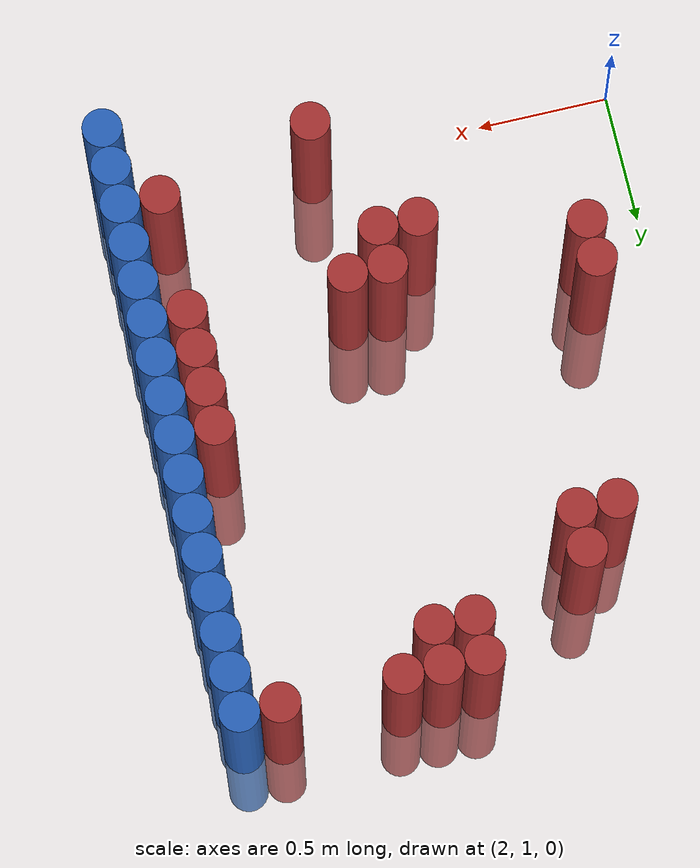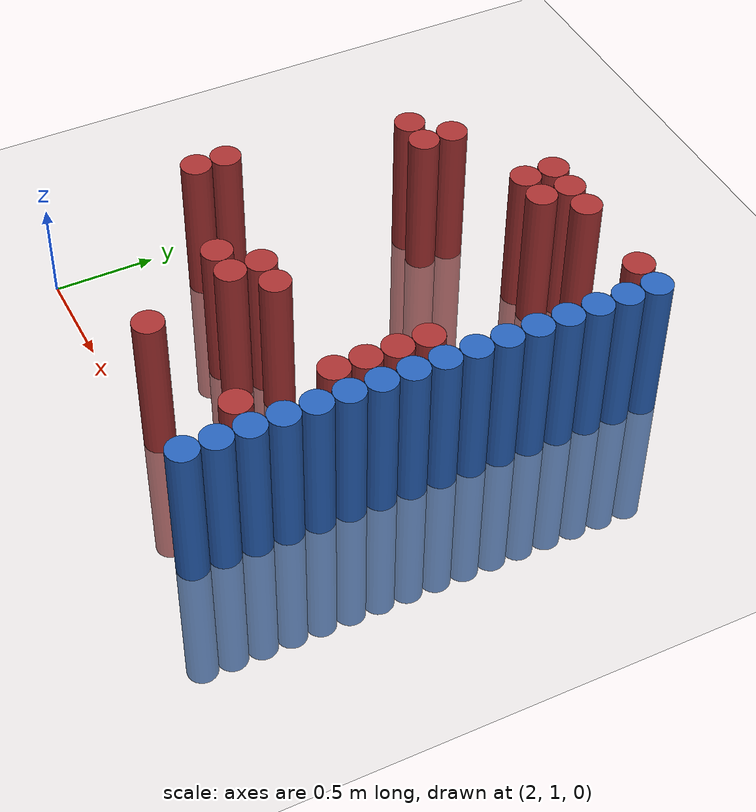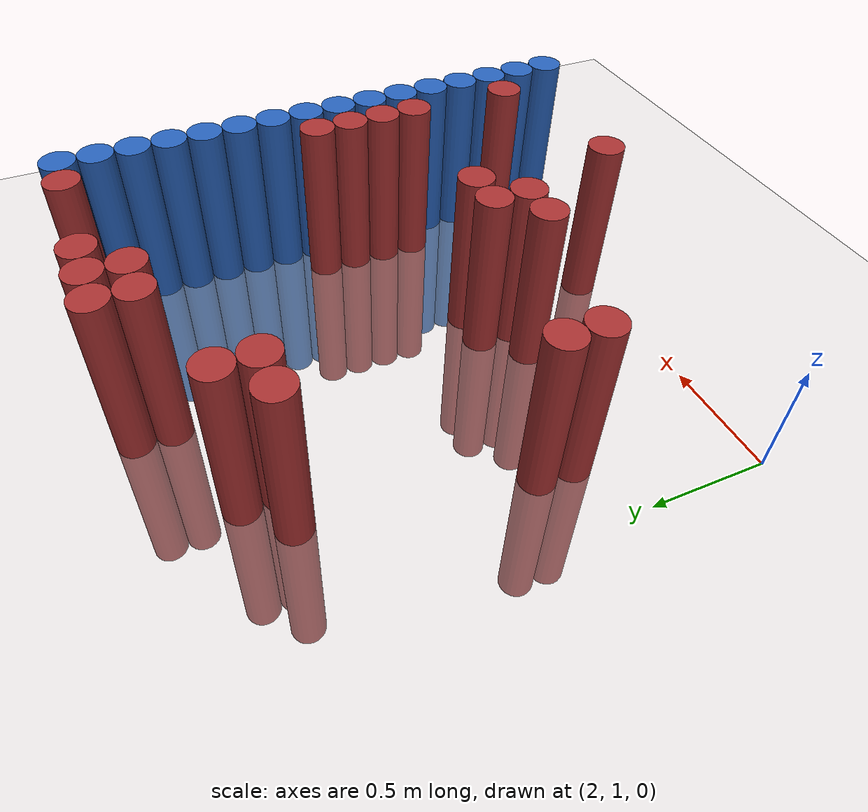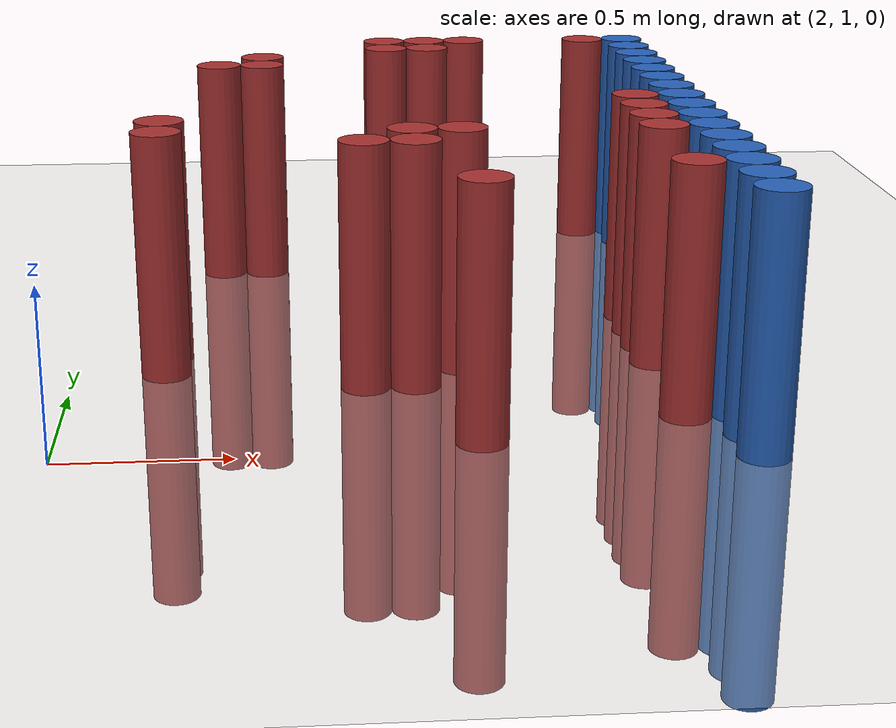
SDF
<sdf version="1.6">
 <world name="default">
  <model name="ground_plane">
   <static>1</static>
   <link name="link">
    <collision name="collision">
     <geometry><plane><normal>0 0 1</normal><size>100 100</size></plane></geometry>
     <surface><friction><ode><mu>100</mu><mu2>50</mu2></ode></friction></surface>
    </collision>
    <visual name="visual">
     <cast_shadows>0</cast_shadows>
     <geometry><plane><normal>0 0 1</normal><size>100 100</size></plane></geometry>
     <material>
      <script><uri>file://media/materials/scripts/gazebo.material</uri><name>Gazebo/Grey</name></script>
     </material>
    </visual>
   </link>
  </model>
  <model name="unit_cylinder_128">
   <static>1</static>
   <pose>3.925000 1.075000 0.000000 0.000000 0.000000 0.000000</pose>
   <link name="link">
    <inertial>
     <mass>1</mass>
     <inertia><ixx>0.145833</ixx><ixy>0</ixy><ixz>0</ixz><iyy>0.145833</iyy><iyz>0</iyz><izz>0.125</izz></inertia>
    </inertial>
    <collision name="collision">
     <geometry><cylinder><radius>0.075000</radius><length>1.5</length></cylinder></geometry>
    </collision>
    <visual name="visual">
     <geometry><cylinder><radius>0.075000</radius><length>1.5</length></cylinder></geometry>
     <material>
      <ambient>0.152000 0.379000 0.720000 1</ambient>
      <diffuse>0.152000 0.379000 0.720000 1</diffuse>
     </material>
     <material>
      <script><name>Gazebo/Grey</name><uri>file://media/materials/scripts/gazebo.material</uri></script>
     </material>
    </visual>
   </link>
  </model>
  <model name="unit_cylinder_130">
   <static>1</static>
   <pose>3.925000 1.225000 0.000000 0.000000 0.000000 0.000000</pose>
   <link name="link">
    <inertial>
     <mass>1</mass>
     <inertia><ixx>0.145833</ixx><ixy>0</ixy><ixz>0</ixz><iyy>0.145833</iyy><iyz>0</iyz><izz>0.125</izz></inertia>
    </inertial>
    <collision name="collision">
     <geometry><cylinder><radius>0.075000</radius><length>1.5</length></cylinder></geometry>
    </collision>
    <visual name="visual">
     <geometry><cylinder><radius>0.075000</radius><length>1.5</length></cylinder></geometry>
     <material>
      <ambient>0.152000 0.379000 0.720000 1</ambient>
      <diffuse>0.152000 0.379000 0.720000 1</diffuse>
     </material>
     <material>
      <script><name>Gazebo/Grey</name><uri>file://media/materials/scripts/gazebo.material</uri></script>
     </material>
    </visual>
   </link>
  </model>
  <model name="unit_cylinder_132">
   <static>1</static>
   <pose>3.925000 1.375000 0.000000 0.000000 0.000000 0.000000</pose>
   <link name="link">
    <inertial>
     <mass>1</mass>
     <inertia><ixx>0.145833</ixx><ixy>0</ixy><ixz>0</ixz><iyy>0.145833</iyy><iyz>0</iyz><izz>0.125</izz></inertia>
    </inertial>
    <collision name="collision">
     <geometry><cylinder><radius>0.075000</radius><length>1.5</length></cylinder></geometry>
    </collision>
    <visual name="visual">
     <geometry><cylinder><radius>0.075000</radius><length>1.5</length></cylinder></geometry>
     <material>
      <ambient>0.152000 0.379000 0.720000 1</ambient>
      <diffuse>0.152000 0.379000 0.720000 1</diffuse>
     </material>
     <material>
      <script><name>Gazebo/Grey</name><uri>file://media/materials/scripts/gazebo.material</uri></script>
     </material>
    </visual>
   </link>
  </model>
  <model name="unit_cylinder_134">
   <static>1</static>
   <pose>3.925000 1.525000 0.000000 0.000000 0.000000 0.000000</pose>
   <link name="link">
    <inertial>
     <mass>1</mass>
     <inertia><ixx>0.145833</ixx><ixy>0</ixy><ixz>0</ixz><iyy>0.145833</iyy><iyz>0</iyz><izz>0.125</izz></inertia>
    </inertial>
    <collision name="collision">
     <geometry><cylinder><radius>0.075000</radius><length>1.5</length></cylinder></geometry>
    </collision>
    <visual name="visual">
     <geometry><cylinder><radius>0.075000</radius><length>1.5</length></cylinder></geometry>
     <material>
      <ambient>0.152000 0.379000 0.720000 1</ambient>
      <diffuse>0.152000 0.379000 0.720000 1</diffuse>
     </material>
     <material>
      <script><name>Gazebo/Grey</name><uri>file://media/materials/scripts/gazebo.material</uri></script>
     </material>
    </visual>
   </link>
  </model>
  <model name="unit_cylinder_136">
   <static>1</static>
   <pose>3.925000 1.675000 0.000000 0.000000 0.000000 0.000000</pose>
   <link name="link">
    <inertial>
     <mass>1</mass>
     <inertia><ixx>0.145833</ixx><ixy>0</ixy><ixz>0</ixz><iyy>0.145833</iyy><iyz>0</iyz><izz>0.125</izz></inertia>
    </inertial>
    <collision name="collision">
     <geometry><cylinder><radius>0.075000</radius><length>1.5</length></cylinder></geometry>
    </collision>
    <visual name="visual">
     <geometry><cylinder><radius>0.075000</radius><length>1.5</length></cylinder></geometry>
     <material>
      <ambient>0.152000 0.379000 0.720000 1</ambient>
      <diffuse>0.152000 0.379000 0.720000 1</diffuse>
     </material>
     <material>
      <script><name>Gazebo/Grey</name><uri>file://media/materials/scripts/gazebo.material</uri></script>
     </material>
    </visual>
   </link>
  </model>
  <model name="unit_cylinder_138">
   <static>1</static>
   <pose>3.925000 1.825000 0.000000 0.000000 0.000000 0.000000</pose>
   <link name="link">
    <inertial>
     <mass>1</mass>
     <inertia><ixx>0.145833</ixx><ixy>0</ixy><ixz>0</ixz><iyy>0.145833</iyy><iyz>0</iyz><izz>0.125</izz></inertia>
    </inertial>
    <collision name="collision">
     <geometry><cylinder><radius>0.075000</radius><length>1.5</length></cylinder></geometry>
    </collision>
    <visual name="visual">
     <geometry><cylinder><radius>0.075000</radius><length>1.5</length></cylinder></geometry>
     <material>
      <ambient>0.152000 0.379000 0.720000 1</ambient>
      <diffuse>0.152000 0.379000 0.720000 1</diffuse>
     </material>
     <material>
      <script><name>Gazebo/Grey</name><uri>file://media/materials/scripts/gazebo.material</uri></script>
     </material>
    </visual>
   </link>
  </model>
  <model name="unit_cylinder_140">
   <static>1</static>
   <pose>3.925000 1.975000 0.000000 0.000000 0.000000 0.000000</pose>
   <link name="link">
    <inertial>
     <mass>1</mass>
     <inertia><ixx>0.145833</ixx><ixy>0</ixy><ixz>0</ixz><iyy>0.145833</iyy><iyz>0</iyz><izz>0.125</izz></inertia>
    </inertial>
    <collision name="collision">
     <geometry><cylinder><radius>0.075000</radius><length>1.5</length></cylinder></geometry>
    </collision>
    <visual name="visual">
     <geometry><cylinder><radius>0.075000</radius><length>1.5</length></cylinder></geometry>
     <material>
      <ambient>0.152000 0.379000 0.720000 1</ambient>
      <diffuse>0.152000 0.379000 0.720000 1</diffuse>
     </material>
     <material>
      <script><name>Gazebo/Grey</name><uri>file://media/materials/scripts/gazebo.material</uri></script>
     </material>
    </visual>
   </link>
  </model>
  <model name="unit_cylinder_142">
   <static>1</static>
   <pose>3.925000 2.125000 0.000000 0.000000 0.000000 0.000000</pose>
   <link name="link">
    <inertial>
     <mass>1</mass>
     <inertia><ixx>0.145833</ixx><ixy>0</ixy><ixz>0</ixz><iyy>0.145833</iyy><iyz>0</iyz><izz>0.125</izz></inertia>
    </inertial>
    <collision name="collision">
     <geometry><cylinder><radius>0.075000</radius><length>1.5</length></cylinder></geometry>
    </collision>
    <visual name="visual">
     <geometry><cylinder><radius>0.075000</radius><length>1.5</length></cylinder></geometry>
     <material>
      <ambient>0.152000 0.379000 0.720000 1</ambient>
      <diffuse>0.152000 0.379000 0.720000 1</diffuse>
     </material>
     <material>
      <script><name>Gazebo/Grey</name><uri>file://media/materials/scripts/gazebo.material</uri></script>
     </material>
    </visual>
   </link>
  </model>
  <model name="unit_cylinder_144">
   <static>1</static>
   <pose>3.925000 2.275000 0.000000 0.000000 0.000000 0.000000</pose>
   <link name="link">
    <inertial>
     <mass>1</mass>
     <inertia><ixx>0.145833</ixx><ixy>0</ixy><ixz>0</ixz><iyy>0.145833</iyy><iyz>0</iyz><izz>0.125</izz></inertia>
    </inertial>
    <collision name="collision">
     <geometry><cylinder><radius>0.075000</radius><length>1.5</length></cylinder></geometry>
    </collision>
    <visual name="visual">
     <geometry><cylinder><radius>0.075000</radius><length>1.5</length></cylinder></geometry>
     <material>
      <ambient>0.152000 0.379000 0.720000 1</ambient>
      <diffuse>0.152000 0.379000 0.720000 1</diffuse>
     </material>
     <material>
      <script><name>Gazebo/Grey</name><uri>file://media/materials/scripts/gazebo.material</uri></script>
     </material>
    </visual>
   </link>
  </model>
  <model name="unit_cylinder_146">
   <static>1</static>
   <pose>3.925000 2.425000 0.000000 0.000000 0.000000 0.000000</pose>
   <link name="link">
    <inertial>
     <mass>1</mass>
     <inertia><ixx>0.145833</ixx><ixy>0</ixy><ixz>0</ixz><iyy>0.145833</iyy><iyz>0</iyz><izz>0.125</izz></inertia>
    </inertial>
    <collision name="collision">
     <geometry><cylinder><radius>0.075000</radius><length>1.5</length></cylinder></geometry>
    </collision>
    <visual name="visual">
     <geometry><cylinder><radius>0.075000</radius><length>1.5</length></cylinder></geometry>
     <material>
      <ambient>0.152000 0.379000 0.720000 1</ambient>
      <diffuse>0.152000 0.379000 0.720000 1</diffuse>
     </material>
     <material>
      <script><name>Gazebo/Grey</name><uri>file://media/materials/scripts/gazebo.material</uri></script>
     </material>
    </visual>
   </link>
  </model>
  <model name="unit_cylinder_148">
   <static>1</static>
   <pose>3.925000 2.575000 0.000000 0.000000 0.000000 0.000000</pose>
   <link name="link">
    <inertial>
     <mass>1</mass>
     <inertia><ixx>0.145833</ixx><ixy>0</ixy><ixz>0</ixz><iyy>0.145833</iyy><iyz>0</iyz><izz>0.125</izz></inertia>
    </inertial>
    <collision name="collision">
     <geometry><cylinder><radius>0.075000</radius><length>1.5</length></cylinder></geometry>
    </collision>
    <visual name="visual">
     <geometry><cylinder><radius>0.075000</radius><length>1.5</length></cylinder></geometry>
     <material>
      <ambient>0.152000 0.379000 0.720000 1</ambient>
      <diffuse>0.152000 0.379000 0.720000 1</diffuse>
     </material>
     <material>
      <script><name>Gazebo/Grey</name><uri>file://media/materials/scripts/gazebo.material</uri></script>
     </material>
    </visual>
   </link>
  </model>
  <model name="unit_cylinder_150">
   <static>1</static>
   <pose>3.925000 2.725000 0.000000 0.000000 0.000000 0.000000</pose>
   <link name="link">
    <inertial>
     <mass>1</mass>
     <inertia><ixx>0.145833</ixx><ixy>0</ixy><ixz>0</ixz><iyy>0.145833</iyy><iyz>0</iyz><izz>0.125</izz></inertia>
    </inertial>
    <collision name="collision">
     <geometry><cylinder><radius>0.075000</radius><length>1.5</length></cylinder></geometry>
    </collision>
    <visual name="visual">
     <geometry><cylinder><radius>0.075000</radius><length>1.5</length></cylinder></geometry>
     <material>
      <ambient>0.152000 0.379000 0.720000 1</ambient>
      <diffuse>0.152000 0.379000 0.720000 1</diffuse>
     </material>
     <material>
      <script><name>Gazebo/Grey</name><uri>file://media/materials/scripts/gazebo.material</uri></script>
     </material>
    </visual>
   </link>
  </model>
  <model name="unit_cylinder_152">
   <static>1</static>
   <pose>3.925000 2.875000 0.000000 0.000000 0.000000 0.000000</pose>
   <link name="link">
    <inertial>
     <mass>1</mass>
     <inertia><ixx>0.145833</ixx><ixy>0</ixy><ixz>0</ixz><iyy>0.145833</iyy><iyz>0</iyz><izz>0.125</izz></inertia>
    </inertial>
    <collision name="collision">
     <geometry><cylinder><radius>0.075000</radius><length>1.5</length></cylinder></geometry>
    </collision>
    <visual name="visual">
     <geometry><cylinder><radius>0.075000</radius><length>1.5</length></cylinder></geometry>
     <material>
      <ambient>0.152000 0.379000 0.720000 1</ambient>
      <diffuse>0.152000 0.379000 0.720000 1</diffuse>
     </material>
     <material>
      <script><name>Gazebo/Grey</name><uri>file://media/materials/scripts/gazebo.material</uri></script>
     </material>
    </visual>
   </link>
  </model>
  <model name="unit_cylinder_154">
   <static>1</static>
   <pose>3.925000 3.025000 0.000000 0.000000 0.000000 0.000000</pose>
   <link name="link">
    <inertial>
     <mass>1</mass>
     <inertia><ixx>0.145833</ixx><ixy>0</ixy><ixz>0</ixz><iyy>0.145833</iyy><iyz>0</iyz><izz>0.125</izz></inertia>
    </inertial>
    <collision name="collision">
     <geometry><cylinder><radius>0.075000</radius><length>1.5</length></cylinder></geometry>
    </collision>
    <visual name="visual">
     <geometry><cylinder><radius>0.075000</radius><length>1.5</length></cylinder></geometry>
     <material>
      <ambient>0.152000 0.379000 0.720000 1</ambient>
      <diffuse>0.152000 0.379000 0.720000 1</diffuse>
     </material>
     <material>
      <script><name>Gazebo/Grey</name><uri>file://media/materials/scripts/gazebo.material</uri></script>
     </material>
    </visual>
   </link>
  </model>
  <model name="unit_cylinder_156">
   <static>1</static>
   <pose>3.925000 3.175000 0.000000 0.000000 0.000000 0.000000</pose>
   <link name="link">
    <inertial>
     <mass>1</mass>
     <inertia><ixx>0.145833</ixx><ixy>0</ixy><ixz>0</ixz><iyy>0.145833</iyy><iyz>0</iyz><izz>0.125</izz></inertia>
    </inertial>
    <collision name="collision">
     <geometry><cylinder><radius>0.075000</radius><length>1.5</length></cylinder></geometry>
    </collision>
    <visual name="visual">
     <geometry><cylinder><radius>0.075000</radius><length>1.5</length></cylinder></geometry>
     <material>
      <ambient>0.152000 0.379000 0.720000 1</ambient>
      <diffuse>0.152000 0.379000 0.720000 1</diffuse>
     </material>
     <material>
      <script><name>Gazebo/Grey</name><uri>file://media/materials/scripts/gazebo.material</uri></script>
     </material>
    </visual>
   </link>
  </model>
  <model name="unit_cylinder_510">
   <static>1</static>
   <pose>2.275000 1.675000 0.000000 0.000000 0.000000 0.000000</pose>
   <link name="link">
    <inertial>
     <mass>1</mass>
     <inertia><ixx>0.145833</ixx><ixy>0</ixy><ixz>0</ixz><iyy>0.145833</iyy><iyz>0</iyz><izz>0.125</izz></inertia>
    </inertial>
    <collision name="collision">
     <geometry><cylinder><radius>0.075000</radius><length>1.5</length></cylinder></geometry>
    </collision>
    <visual name="visual">
     <geometry><cylinder><radius>0.075000</radius><length>1.5</length></cylinder></geometry>
     <material>
      <ambient>0.648000 0.192000 0.192000 1</ambient>
      <diffuse>0.648000 0.192000 0.192000 1</diffuse>
     </material>
     <material>
      <script><name>Gazebo/Grey</name><uri>file://media/materials/scripts/gazebo.material</uri></script>
     </material>
    </visual>
   </link>
  </model>
  <model name="unit_cylinder_511">
   <static>1</static>
   <pose>2.275000 1.825000 0.000000 0.000000 0.000000 0.000000</pose>
   <link name="link">
    <inertial>
     <mass>1</mass>
     <inertia><ixx>0.145833</ixx><ixy>0</ixy><ixz>0</ixz><iyy>0.145833</iyy><iyz>0</iyz><izz>0.125</izz></inertia>
    </inertial>
    <collision name="collision">
     <geometry><cylinder><radius>0.075000</radius><length>1.5</length></cylinder></geometry>
    </collision>
    <visual name="visual">
     <geometry><cylinder><radius>0.075000</radius><length>1.5</length></cylinder></geometry>
     <material>
      <ambient>0.648000 0.192000 0.192000 1</ambient>
      <diffuse>0.648000 0.192000 0.192000 1</diffuse>
     </material>
     <material>
      <script><name>Gazebo/Grey</name><uri>file://media/materials/scripts/gazebo.material</uri></script>
     </material>
    </visual>
   </link>
  </model>
  <model name="unit_cylinder_517">
   <static>1</static>
   <pose>2.425000 2.725000 0.000000 0.000000 0.000000 0.000000</pose>
   <link name="link">
    <inertial>
     <mass>1</mass>
     <inertia><ixx>0.145833</ixx><ixy>0</ixy><ixz>0</ixz><iyy>0.145833</iyy><iyz>0</iyz><izz>0.125</izz></inertia>
    </inertial>
    <collision name="collision">
     <geometry><cylinder><radius>0.075000</radius><length>1.5</length></cylinder></geometry>
    </collision>
    <visual name="visual">
     <geometry><cylinder><radius>0.075000</radius><length>1.5</length></cylinder></geometry>
     <material>
      <ambient>0.648000 0.192000 0.192000 1</ambient>
      <diffuse>0.648000 0.192000 0.192000 1</diffuse>
     </material>
     <material>
      <script><name>Gazebo/Grey</name><uri>file://media/materials/scripts/gazebo.material</uri></script>
     </material>
    </visual>
   </link>
  </model>
  <model name="unit_cylinder_524">
   <static>1</static>
   <pose>2.575000 2.725000 0.000000 0.000000 0.000000 0.000000</pose>
   <link name="link">
    <inertial>
     <mass>1</mass>
     <inertia><ixx>0.145833</ixx><ixy>0</ixy><ixz>0</ixz><iyy>0.145833</iyy><iyz>0</iyz><izz>0.125</izz></inertia>
    </inertial>
    <collision name="collision">
     <geometry><cylinder><radius>0.075000</radius><length>1.5</length></cylinder></geometry>
    </collision>
    <visual name="visual">
     <geometry><cylinder><radius>0.075000</radius><length>1.5</length></cylinder></geometry>
     <material>
      <ambient>0.648000 0.192000 0.192000 1</ambient>
      <diffuse>0.648000 0.192000 0.192000 1</diffuse>
     </material>
     <material>
      <script><name>Gazebo/Grey</name><uri>file://media/materials/scripts/gazebo.material</uri></script>
     </material>
    </visual>
   </link>
  </model>
  <model name="unit_cylinder_525">
   <static>1</static>
   <pose>2.575000 2.875000 0.000000 0.000000 0.000000 0.000000</pose>
   <link name="link">
    <inertial>
     <mass>1</mass>
     <inertia><ixx>0.145833</ixx><ixy>0</ixy><ixz>0</ixz><iyy>0.145833</iyy><iyz>0</iyz><izz>0.125</izz></inertia>
    </inertial>
    <collision name="collision">
     <geometry><cylinder><radius>0.075000</radius><length>1.5</length></cylinder></geometry>
    </collision>
    <visual name="visual">
     <geometry><cylinder><radius>0.075000</radius><length>1.5</length></cylinder></geometry>
     <material>
      <ambient>0.648000 0.192000 0.192000 1</ambient>
      <diffuse>0.648000 0.192000 0.192000 1</diffuse>
     </material>
     <material>
      <script><name>Gazebo/Grey</name><uri>file://media/materials/scripts/gazebo.material</uri></script>
     </material>
    </visual>
   </link>
  </model>
  <model name="unit_cylinder_549">
   <static>1</static>
   <pose>2.875000 1.525000 0.000000 0.000000 0.000000 0.000000</pose>
   <link name="link">
    <inertial>
     <mass>1</mass>
     <inertia><ixx>0.145833</ixx><ixy>0</ixy><ixz>0</ixz><iyy>0.145833</iyy><iyz>0</iyz><izz>0.125</izz></inertia>
    </inertial>
    <collision name="collision">
     <geometry><cylinder><radius>0.075000</radius><length>1.5</length></cylinder></geometry>
    </collision>
    <visual name="visual">
     <geometry><cylinder><radius>0.075000</radius><length>1.5</length></cylinder></geometry>
     <material>
      <ambient>0.648000 0.192000 0.192000 1</ambient>
      <diffuse>0.648000 0.192000 0.192000 1</diffuse>
     </material>
     <material>
      <script><name>Gazebo/Grey</name><uri>file://media/materials/scripts/gazebo.material</uri></script>
     </material>
    </visual>
   </link>
  </model>
  <model name="unit_cylinder_558">
   <static>1</static>
   <pose>3.025000 1.525000 0.000000 0.000000 0.000000 0.000000</pose>
   <link name="link">
    <inertial>
     <mass>1</mass>
     <inertia><ixx>0.145833</ixx><ixy>0</ixy><ixz>0</ixz><iyy>0.145833</iyy><iyz>0</iyz><izz>0.125</izz></inertia>
    </inertial>
    <collision name="collision">
     <geometry><cylinder><radius>0.075000</radius><length>1.5</length></cylinder></geometry>
    </collision>
    <visual name="visual">
     <geometry><cylinder><radius>0.075000</radius><length>1.5</length></cylinder></geometry>
     <material>
      <ambient>0.648000 0.192000 0.192000 1</ambient>
      <diffuse>0.648000 0.192000 0.192000 1</diffuse>
     </material>
     <material>
      <script><name>Gazebo/Grey</name><uri>file://media/materials/scripts/gazebo.material</uri></script>
     </material>
    </visual>
   </link>
  </model>
  <model name="unit_cylinder_559">
   <static>1</static>
   <pose>3.025000 1.675000 0.000000 0.000000 0.000000 0.000000</pose>
   <link name="link">
    <inertial>
     <mass>1</mass>
     <inertia><ixx>0.145833</ixx><ixy>0</ixy><ixz>0</ixz><iyy>0.145833</iyy><iyz>0</iyz><izz>0.125</izz></inertia>
    </inertial>
    <collision name="collision">
     <geometry><cylinder><radius>0.075000</radius><length>1.5</length></cylinder></geometry>
    </collision>
    <visual name="visual">
     <geometry><cylinder><radius>0.075000</radius><length>1.5</length></cylinder></geometry>
     <material>
      <ambient>0.648000 0.192000 0.192000 1</ambient>
      <diffuse>0.648000 0.192000 0.192000 1</diffuse>
     </material>
     <material>
      <script><name>Gazebo/Grey</name><uri>file://media/materials/scripts/gazebo.material</uri></script>
     </material>
    </visual>
   </link>
  </model>
  <model name="unit_cylinder_560">
   <static>1</static>
   <pose>3.025000 3.025000 0.000000 0.000000 0.000000 0.000000</pose>
   <link name="link">
    <inertial>
     <mass>1</mass>
     <inertia><ixx>0.145833</ixx><ixy>0</ixy><ixz>0</ixz><iyy>0.145833</iyy><iyz>0</iyz><izz>0.125</izz></inertia>
    </inertial>
    <collision name="collision">
     <geometry><cylinder><radius>0.075000</radius><length>1.5</length></cylinder></geometry>
    </collision>
    <visual name="visual">
     <geometry><cylinder><radius>0.075000</radius><length>1.5</length></cylinder></geometry>
     <material>
      <ambient>0.648000 0.192000 0.192000 1</ambient>
      <diffuse>0.648000 0.192000 0.192000 1</diffuse>
     </material>
     <material>
      <script><name>Gazebo/Grey</name><uri>file://media/materials/scripts/gazebo.material</uri></script>
     </material>
    </visual>
   </link>
  </model>
  <model name="unit_cylinder_561">
   <static>1</static>
   <pose>3.025000 3.175000 0.000000 0.000000 0.000000 0.000000</pose>
   <link name="link">
    <inertial>
     <mass>1</mass>
     <inertia><ixx>0.145833</ixx><ixy>0</ixy><ixz>0</ixz><iyy>0.145833</iyy><iyz>0</iyz><izz>0.125</izz></inertia>
    </inertial>
    <collision name="collision">
     <geometry><cylinder><radius>0.075000</radius><length>1.5</length></cylinder></geometry>
    </collision>
    <visual name="visual">
     <geometry><cylinder><radius>0.075000</radius><length>1.5</length></cylinder></geometry>
     <material>
      <ambient>0.648000 0.192000 0.192000 1</ambient>
      <diffuse>0.648000 0.192000 0.192000 1</diffuse>
     </material>
     <material>
      <script><name>Gazebo/Grey</name><uri>file://media/materials/scripts/gazebo.material</uri></script>
     </material>
    </visual>
   </link>
  </model>
  <model name="unit_cylinder_568">
   <static>1</static>
   <pose>3.175000 1.075000 0.000000 0.000000 0.000000 0.000000</pose>
   <link name="link">
    <inertial>
     <mass>1</mass>
     <inertia><ixx>0.145833</ixx><ixy>0</ixy><ixz>0</ixz><iyy>0.145833</iyy><iyz>0</iyz><izz>0.125</izz></inertia>
    </inertial>
    <collision name="collision">
     <geometry><cylinder><radius>0.075000</radius><length>1.5</length></cylinder></geometry>
    </collision>
    <visual name="visual">
     <geometry><cylinder><radius>0.075000</radius><length>1.5</length></cylinder></geometry>
     <material>
      <ambient>0.648000 0.192000 0.192000 1</ambient>
      <diffuse>0.648000 0.192000 0.192000 1</diffuse>
     </material>
     <material>
      <script><name>Gazebo/Grey</name><uri>file://media/materials/scripts/gazebo.material</uri></script>
     </material>
    </visual>
   </link>
  </model>
  <model name="unit_cylinder_569">
   <static>1</static>
   <pose>3.175000 1.675000 0.000000 0.000000 0.000000 0.000000</pose>
   <link name="link">
    <inertial>
     <mass>1</mass>
     <inertia><ixx>0.145833</ixx><ixy>0</ixy><ixz>0</ixz><iyy>0.145833</iyy><iyz>0</iyz><izz>0.125</izz></inertia>
    </inertial>
    <collision name="collision">
     <geometry><cylinder><radius>0.075000</radius><length>1.5</length></cylinder></geometry>
    </collision>
    <visual name="visual">
     <geometry><cylinder><radius>0.075000</radius><length>1.5</length></cylinder></geometry>
     <material>
      <ambient>0.648000 0.192000 0.192000 1</ambient>
      <diffuse>0.648000 0.192000 0.192000 1</diffuse>
     </material>
     <material>
      <script><name>Gazebo/Grey</name><uri>file://media/materials/scripts/gazebo.material</uri></script>
     </material>
    </visual>
   </link>
  </model>
  <model name="unit_cylinder_570">
   <static>1</static>
   <pose>3.175000 3.025000 0.000000 0.000000 0.000000 0.000000</pose>
   <link name="link">
    <inertial>
     <mass>1</mass>
     <inertia><ixx>0.145833</ixx><ixy>0</ixy><ixz>0</ixz><iyy>0.145833</iyy><iyz>0</iyz><izz>0.125</izz></inertia>
    </inertial>
    <collision name="collision">
     <geometry><cylinder><radius>0.075000</radius><length>1.5</length></cylinder></geometry>
    </collision>
    <visual name="visual">
     <geometry><cylinder><radius>0.075000</radius><length>1.5</length></cylinder></geometry>
     <material>
      <ambient>0.648000 0.192000 0.192000 1</ambient>
      <diffuse>0.648000 0.192000 0.192000 1</diffuse>
     </material>
     <material>
      <script><name>Gazebo/Grey</name><uri>file://media/materials/scripts/gazebo.material</uri></script>
     </material>
    </visual>
   </link>
  </model>
  <model name="unit_cylinder_571">
   <static>1</static>
   <pose>3.175000 3.175000 0.000000 0.000000 0.000000 0.000000</pose>
   <link name="link">
    <inertial>
     <mass>1</mass>
     <inertia><ixx>0.145833</ixx><ixy>0</ixy><ixz>0</ixz><iyy>0.145833</iyy><iyz>0</iyz><izz>0.125</izz></inertia>
    </inertial>
    <collision name="collision">
     <geometry><cylinder><radius>0.075000</radius><length>1.5</length></cylinder></geometry>
    </collision>
    <visual name="visual">
     <geometry><cylinder><radius>0.075000</radius><length>1.5</length></cylinder></geometry>
     <material>
      <ambient>0.648000 0.192000 0.192000 1</ambient>
      <diffuse>0.648000 0.192000 0.192000 1</diffuse>
     </material>
     <material>
      <script><name>Gazebo/Grey</name><uri>file://media/materials/scripts/gazebo.material</uri></script>
     </material>
    </visual>
   </link>
  </model>
  <model name="unit_cylinder_584">
   <static>1</static>
   <pose>3.325000 3.175000 0.000000 0.000000 0.000000 0.000000</pose>
   <link name="link">
    <inertial>
     <mass>1</mass>
     <inertia><ixx>0.145833</ixx><ixy>0</ixy><ixz>0</ixz><iyy>0.145833</iyy><iyz>0</iyz><izz>0.125</izz></inertia>
    </inertial>
    <collision name="collision">
     <geometry><cylinder><radius>0.075000</radius><length>1.5</length></cylinder></geometry>
    </collision>
    <visual name="visual">
     <geometry><cylinder><radius>0.075000</radius><length>1.5</length></cylinder></geometry>
     <material>
      <ambient>0.648000 0.192000 0.192000 1</ambient>
      <diffuse>0.648000 0.192000 0.192000 1</diffuse>
     </material>
     <material>
      <script><name>Gazebo/Grey</name><uri>file://media/materials/scripts/gazebo.material</uri></script>
     </material>
    </visual>
   </link>
  </model>
  <model name="unit_cylinder_609">
   <static>1</static>
   <pose>3.775000 1.225000 0.000000 0.000000 0.000000 0.000000</pose>
   <link name="link">
    <inertial>
     <mass>1</mass>
     <inertia><ixx>0.145833</ixx><ixy>0</ixy><ixz>0</ixz><iyy>0.145833</iyy><iyz>0</iyz><izz>0.125</izz></inertia>
    </inertial>
    <collision name="collision">
     <geometry><cylinder><radius>0.075000</radius><length>1.5</length></cylinder></geometry>
    </collision>
    <visual name="visual">
     <geometry><cylinder><radius>0.075000</radius><length>1.5</length></cylinder></geometry>
     <material>
      <ambient>0.648000 0.192000 0.192000 1</ambient>
      <diffuse>0.648000 0.192000 0.192000 1</diffuse>
     </material>
     <material>
      <script><name>Gazebo/Grey</name><uri>file://media/materials/scripts/gazebo.material</uri></script>
     </material>
    </visual>
   </link>
  </model>
  <model name="unit_cylinder_610">
   <static>1</static>
   <pose>3.775000 1.675000 0.000000 0.000000 0.000000 0.000000</pose>
   <link name="link">
    <inertial>
     <mass>1</mass>
     <inertia><ixx>0.145833</ixx><ixy>0</ixy><ixz>0</ixz><iyy>0.145833</iyy><iyz>0</iyz><izz>0.125</izz></inertia>
    </inertial>
    <collision name="collision">
     <geometry><cylinder><radius>0.075000</radius><length>1.5</length></cylinder></geometry>
    </collision>
    <visual name="visual">
     <geometry><cylinder><radius>0.075000</radius><length>1.5</length></cylinder></geometry>
     <material>
      <ambient>0.648000 0.192000 0.192000 1</ambient>
      <diffuse>0.648000 0.192000 0.192000 1</diffuse>
     </material>
     <material>
      <script><name>Gazebo/Grey</name><uri>file://media/materials/scripts/gazebo.material</uri></script>
     </material>
    </visual>
   </link>
  </model>
  <model name="unit_cylinder_611">
   <static>1</static>
   <pose>3.775000 1.825000 0.000000 0.000000 0.000000 0.000000</pose>
   <link name="link">
    <inertial>
     <mass>1</mass>
     <inertia><ixx>0.145833</ixx><ixy>0</ixy><ixz>0</ixz><iyy>0.145833</iyy><iyz>0</iyz><izz>0.125</izz></inertia>
    </inertial>
    <collision name="collision">
     <geometry><cylinder><radius>0.075000</radius><length>1.5</length></cylinder></geometry>
    </collision>
    <visual name="visual">
     <geometry><cylinder><radius>0.075000</radius><length>1.5</length></cylinder></geometry>
     <material>
      <ambient>0.648000 0.192000 0.192000 1</ambient>
      <diffuse>0.648000 0.192000 0.192000 1</diffuse>
     </material>
     <material>
      <script><name>Gazebo/Grey</name><uri>file://media/materials/scripts/gazebo.material</uri></script>
     </material>
    </visual>
   </link>
  </model>
  <model name="unit_cylinder_612">
   <static>1</static>
   <pose>3.775000 1.975000 0.000000 0.000000 0.000000 0.000000</pose>
   <link name="link">
    <inertial>
     <mass>1</mass>
     <inertia><ixx>0.145833</ixx><ixy>0</ixy><ixz>0</ixz><iyy>0.145833</iyy><iyz>0</iyz><izz>0.125</izz></inertia>
    </inertial>
    <collision name="collision">
     <geometry><cylinder><radius>0.075000</radius><length>1.5</length></cylinder></geometry>
    </collision>
    <visual name="visual">
     <geometry><cylinder><radius>0.075000</radius><length>1.5</length></cylinder></geometry>
     <material>
      <ambient>0.648000 0.192000 0.192000 1</ambient>
      <diffuse>0.648000 0.192000 0.192000 1</diffuse>
     </material>
     <material>
      <script><name>Gazebo/Grey</name><uri>file://media/materials/scripts/gazebo.material</uri></script>
     </material>
    </visual>
   </link>
  </model>
  <model name="unit_cylinder_613">
   <static>1</static>
   <pose>3.775000 2.125000 0.000000 0.000000 0.000000 0.000000</pose>
   <link name="link">
    <inertial>
     <mass>1</mass>
     <inertia><ixx>0.145833</ixx><ixy>0</ixy><ixz>0</ixz><iyy>0.145833</iyy><iyz>0</iyz><izz>0.125</izz></inertia>
    </inertial>
    <collision name="collision">
     <geometry><cylinder><radius>0.075000</radius><length>1.5</length></cylinder></geometry>
    </collision>
    <visual name="visual">
     <geometry><cylinder><radius>0.075000</radius><length>1.5</length></cylinder></geometry>
     <material>
      <ambient>0.648000 0.192000 0.192000 1</ambient>
      <diffuse>0.648000 0.192000 0.192000 1</diffuse>
     </material>
     <material>
      <script><name>Gazebo/Grey</name><uri>file://media/materials/scripts/gazebo.material</uri></script>
     </material>
    </visual>
   </link>
  </model>
  <model name="unit_cylinder_614">
   <static>1</static>
   <pose>3.775000 3.175000 0.000000 0.000000 0.000000 0.000000</pose>
   <link name="link">
    <inertial>
     <mass>1</mass>
     <inertia><ixx>0.145833</ixx><ixy>0</ixy><ixz>0</ixz><iyy>0.145833</iyy><iyz>0</iyz><izz>0.125</izz></inertia>
    </inertial>
    <collision name="collision">
     <geometry><cylinder><radius>0.075000</radius><length>1.5</length></cylinder></geometry>
    </collision>
    <visual name="visual">
     <geometry><cylinder><radius>0.075000</radius><length>1.5</length></cylinder></geometry>
     <material>
      <ambient>0.648000 0.192000 0.192000 1</ambient>
      <diffuse>0.648000 0.192000 0.192000 1</diffuse>
     </material>
     <material>
      <script><name>Gazebo/Grey</name><uri>file://media/materials/scripts/gazebo.material</uri></script>
     </material>
    </visual>
   </link>
  </model>
  <model name="unit_cylinder_641">
   <static>1</static>
   <pose>3.925000 0.925000 0.000000 0.000000 0.000000 0.000000</pose>
   <link name="link">
    <inertial>
     <mass>1</mass>
     <inertia><ixx>0.145833</ixx><ixy>0</ixy><ixz>0</ixz><iyy>0.145833</iyy><iyz>0</iyz><izz>0.125</izz></inertia>
    </inertial>
    <collision name="collision">
     <geometry><cylinder><radius>0.075000</radius><length>1.5</length></cylinder></geometry>
    </collision>
    <visual name="visual">
     <geometry><cylinder><radius>0.075000</radius><length>1.5</length></cylinder></geometry>
     <material>
      <ambient>0.152000 0.379000 0.720000 1</ambient>
      <diffuse>0.152000 0.379000 0.720000 1</diffuse>
     </material>
     <material>
      <script><name>Gazebo/Grey</name><uri>file://media/materials/scripts/gazebo.material</uri></script>
     </material>
    </visual>
   </link>
  </model>
  <model name="unit_cylinder_642">
   <static>1</static>
   <pose>3.925000 1.075000 0.000000 0.000000 0.000000 0.000000</pose>
   <link name="link">
    <inertial>
     <mass>1</mass>
     <inertia><ixx>0.145833</ixx><ixy>0</ixy><ixz>0</ixz><iyy>0.145833</iyy><iyz>0</iyz><izz>0.125</izz></inertia>
    </inertial>
    <collision name="collision">
     <geometry><cylinder><radius>0.075000</radius><length>1.5</length></cylinder></geometry>
    </collision>
    <visual name="visual">
     <geometry><cylinder><radius>0.075000</radius><length>1.5</length></cylinder></geometry>
     <material>
      <ambient>0.152000 0.379000 0.720000 1</ambient>
      <diffuse>0.152000 0.379000 0.720000 1</diffuse>
     </material>
     <material>
      <script><name>Gazebo/Grey</name><uri>file://media/materials/scripts/gazebo.material</uri></script>
     </material>
    </visual>
   </link>
  </model>
  <model name="unit_cylinder_643">
   <static>1</static>
   <pose>3.925000 1.225000 0.000000 0.000000 0.000000 0.000000</pose>
   <link name="link">
    <inertial>
     <mass>1</mass>
     <inertia><ixx>0.145833</ixx><ixy>0</ixy><ixz>0</ixz><iyy>0.145833</iyy><iyz>0</iyz><izz>0.125</izz></inertia>
    </inertial>
    <collision name="collision">
     <geometry><cylinder><radius>0.075000</radius><length>1.5</length></cylinder></geometry>
    </collision>
    <visual name="visual">
     <geometry><cylinder><radius>0.075000</radius><length>1.5</length></cylinder></geometry>
     <material>
      <ambient>0.152000 0.379000 0.720000 1</ambient>
      <diffuse>0.152000 0.379000 0.720000 1</diffuse>
     </material>
     <material>
      <script><name>Gazebo/Grey</name><uri>file://media/materials/scripts/gazebo.material</uri></script>
     </material>
    </visual>
   </link>
  </model>
  <model name="unit_cylinder_644">
   <static>1</static>
   <pose>3.925000 1.375000 0.000000 0.000000 0.000000 0.000000</pose>
   <link name="link">
    <inertial>
     <mass>1</mass>
     <inertia><ixx>0.145833</ixx><ixy>0</ixy><ixz>0</ixz><iyy>0.145833</iyy><iyz>0</iyz><izz>0.125</izz></inertia>
    </inertial>
    <collision name="collision">
     <geometry><cylinder><radius>0.075000</radius><length>1.5</length></cylinder></geometry>
    </collision>
    <visual name="visual">
     <geometry><cylinder><radius>0.075000</radius><length>1.5</length></cylinder></geometry>
     <material>
      <ambient>0.152000 0.379000 0.720000 1</ambient>
      <diffuse>0.152000 0.379000 0.720000 1</diffuse>
     </material>
     <material>
      <script><name>Gazebo/Grey</name><uri>file://media/materials/scripts/gazebo.material</uri></script>
     </material>
    </visual>
   </link>
  </model>
  <model name="unit_cylinder_645">
   <static>1</static>
   <pose>3.925000 1.525000 0.000000 0.000000 0.000000 0.000000</pose>
   <link name="link">
    <inertial>
     <mass>1</mass>
     <inertia><ixx>0.145833</ixx><ixy>0</ixy><ixz>0</ixz><iyy>0.145833</iyy><iyz>0</iyz><izz>0.125</izz></inertia>
    </inertial>
    <collision name="collision">
     <geometry><cylinder><radius>0.075000</radius><length>1.5</length></cylinder></geometry>
    </collision>
    <visual name="visual">
     <geometry><cylinder><radius>0.075000</radius><length>1.5</length></cylinder></geometry>
     <material>
      <ambient>0.152000 0.379000 0.720000 1</ambient>
      <diffuse>0.152000 0.379000 0.720000 1</diffuse>
     </material>
     <material>
      <script><name>Gazebo/Grey</name><uri>file://media/materials/scripts/gazebo.material</uri></script>
     </material>
    </visual>
   </link>
  </model>
  <model name="unit_cylinder_646">
   <static>1</static>
   <pose>3.925000 1.675000 0.000000 0.000000 0.000000 0.000000</pose>
   <link name="link">
    <inertial>
     <mass>1</mass>
     <inertia><ixx>0.145833</ixx><ixy>0</ixy><ixz>0</ixz><iyy>0.145833</iyy><iyz>0</iyz><izz>0.125</izz></inertia>
    </inertial>
    <collision name="collision">
     <geometry><cylinder><radius>0.075000</radius><length>1.5</length></cylinder></geometry>
    </collision>
    <visual name="visual">
     <geometry><cylinder><radius>0.075000</radius><length>1.5</length></cylinder></geometry>
     <material>
      <ambient>0.152000 0.379000 0.720000 1</ambient>
      <diffuse>0.152000 0.379000 0.720000 1</diffuse>
     </material>
     <material>
      <script><name>Gazebo/Grey</name><uri>file://media/materials/scripts/gazebo.material</uri></script>
     </material>
    </visual>
   </link>
  </model>
  <model name="unit_cylinder_647">
   <static>1</static>
   <pose>3.925000 1.825000 0.000000 0.000000 0.000000 0.000000</pose>
   <link name="link">
    <inertial>
     <mass>1</mass>
     <inertia><ixx>0.145833</ixx><ixy>0</ixy><ixz>0</ixz><iyy>0.145833</iyy><iyz>0</iyz><izz>0.125</izz></inertia>
    </inertial>
    <collision name="collision">
     <geometry><cylinder><radius>0.075000</radius><length>1.5</length></cylinder></geometry>
    </collision>
    <visual name="visual">
     <geometry><cylinder><radius>0.075000</radius><length>1.5</length></cylinder></geometry>
     <material>
      <ambient>0.152000 0.379000 0.720000 1</ambient>
      <diffuse>0.152000 0.379000 0.720000 1</diffuse>
     </material>
     <material>
      <script><name>Gazebo/Grey</name><uri>file://media/materials/scripts/gazebo.material</uri></script>
     </material>
    </visual>
   </link>
  </model>
  <model name="unit_cylinder_648">
   <static>1</static>
   <pose>3.925000 1.975000 0.000000 0.000000 0.000000 0.000000</pose>
   <link name="link">
    <inertial>
     <mass>1</mass>
     <inertia><ixx>0.145833</ixx><ixy>0</ixy><ixz>0</ixz><iyy>0.145833</iyy><iyz>0</iyz><izz>0.125</izz></inertia>
    </inertial>
    <collision name="collision">
     <geometry><cylinder><radius>0.075000</radius><length>1.5</length></cylinder></geometry>
    </collision>
    <visual name="visual">
     <geometry><cylinder><radius>0.075000</radius><length>1.5</length></cylinder></geometry>
     <material>
      <ambient>0.152000 0.379000 0.720000 1</ambient>
      <diffuse>0.152000 0.379000 0.720000 1</diffuse>
     </material>
     <material>
      <script><name>Gazebo/Grey</name><uri>file://media/materials/scripts/gazebo.material</uri></script>
     </material>
    </visual>
   </link>
  </model>
  <model name="unit_cylinder_649">
   <static>1</static>
   <pose>3.925000 2.125000 0.000000 0.000000 0.000000 0.000000</pose>
   <link name="link">
    <inertial>
     <mass>1</mass>
     <inertia><ixx>0.145833</ixx><ixy>0</ixy><ixz>0</ixz><iyy>0.145833</iyy><iyz>0</iyz><izz>0.125</izz></inertia>
    </inertial>
    <collision name="collision">
     <geometry><cylinder><radius>0.075000</radius><length>1.5</length></cylinder></geometry>
    </collision>
    <visual name="visual">
     <geometry><cylinder><radius>0.075000</radius><length>1.5</length></cylinder></geometry>
     <material>
      <ambient>0.152000 0.379000 0.720000 1</ambient>
      <diffuse>0.152000 0.379000 0.720000 1</diffuse>
     </material>
     <material>
      <script><name>Gazebo/Grey</name><uri>file://media/materials/scripts/gazebo.material</uri></script>
     </material>
    </visual>
   </link>
  </model>
  <model name="unit_cylinder_650">
   <static>1</static>
   <pose>3.925000 2.275000 0.000000 0.000000 0.000000 0.000000</pose>
   <link name="link">
    <inertial>
     <mass>1</mass>
     <inertia><ixx>0.145833</ixx><ixy>0</ixy><ixz>0</ixz><iyy>0.145833</iyy><iyz>0</iyz><izz>0.125</izz></inertia>
    </inertial>
    <collision name="collision">
     <geometry><cylinder><radius>0.075000</radius><length>1.5</length></cylinder></geometry>
    </collision>
    <visual name="visual">
     <geometry><cylinder><radius>0.075000</radius><length>1.5</length></cylinder></geometry>
     <material>
      <ambient>0.152000 0.379000 0.720000 1</ambient>
      <diffuse>0.152000 0.379000 0.720000 1</diffuse>
     </material>
     <material>
      <script><name>Gazebo/Grey</name><uri>file://media/materials/scripts/gazebo.material</uri></script>
     </material>
    </visual>
   </link>
  </model>
  <model name="unit_cylinder_651">
   <static>1</static>
   <pose>3.925000 2.425000 0.000000 0.000000 0.000000 0.000000</pose>
   <link name="link">
    <inertial>
     <mass>1</mass>
     <inertia><ixx>0.145833</ixx><ixy>0</ixy><ixz>0</ixz><iyy>0.145833</iyy><iyz>0</iyz><izz>0.125</izz></inertia>
    </inertial>
    <collision name="collision">
     <geometry><cylinder><radius>0.075000</radius><length>1.5</length></cylinder></geometry>
    </collision>
    <visual name="visual">
     <geometry><cylinder><radius>0.075000</radius><length>1.5</length></cylinder></geometry>
     <material>
      <ambient>0.152000 0.379000 0.720000 1</ambient>
      <diffuse>0.152000 0.379000 0.720000 1</diffuse>
     </material>
     <material>
      <script><name>Gazebo/Grey</name><uri>file://media/materials/scripts/gazebo.material</uri></script>
     </material>
    </visual>
   </link>
  </model>
  <model name="unit_cylinder_652">
   <static>1</static>
   <pose>3.925000 2.575000 0.000000 0.000000 0.000000 0.000000</pose>
   <link name="link">
    <inertial>
     <mass>1</mass>
     <inertia><ixx>0.145833</ixx><ixy>0</ixy><ixz>0</ixz><iyy>0.145833</iyy><iyz>0</iyz><izz>0.125</izz></inertia>
    </inertial>
    <collision name="collision">
     <geometry><cylinder><radius>0.075000</radius><length>1.5</length></cylinder></geometry>
    </collision>
    <visual name="visual">
     <geometry><cylinder><radius>0.075000</radius><length>1.5</length></cylinder></geometry>
     <material>
      <ambient>0.152000 0.379000 0.720000 1</ambient>
      <diffuse>0.152000 0.379000 0.720000 1</diffuse>
     </material>
     <material>
      <script><name>Gazebo/Grey</name><uri>file://media/materials/scripts/gazebo.material</uri></script>
     </material>
    </visual>
   </link>
  </model>
  <model name="unit_cylinder_653">
   <static>1</static>
   <pose>3.925000 2.725000 0.000000 0.000000 0.000000 0.000000</pose>
   <link name="link">
    <inertial>
     <mass>1</mass>
     <inertia><ixx>0.145833</ixx><ixy>0</ixy><ixz>0</ixz><iyy>0.145833</iyy><iyz>0</iyz><izz>0.125</izz></inertia>
    </inertial>
    <collision name="collision">
     <geometry><cylinder><radius>0.075000</radius><length>1.5</length></cylinder></geometry>
    </collision>
    <visual name="visual">
     <geometry><cylinder><radius>0.075000</radius><length>1.5</length></cylinder></geometry>
     <material>
      <ambient>0.152000 0.379000 0.720000 1</ambient>
      <diffuse>0.152000 0.379000 0.720000 1</diffuse>
     </material>
     <material>
      <script><name>Gazebo/Grey</name><uri>file://media/materials/scripts/gazebo.material</uri></script>
     </material>
    </visual>
   </link>
  </model>
  <model name="unit_cylinder_654">
   <static>1</static>
   <pose>3.925000 2.875000 0.000000 0.000000 0.000000 0.000000</pose>
   <link name="link">
    <inertial>
     <mass>1</mass>
     <inertia><ixx>0.145833</ixx><ixy>0</ixy><ixz>0</ixz><iyy>0.145833</iyy><iyz>0</iyz><izz>0.125</izz></inertia>
    </inertial>
    <collision name="collision">
     <geometry><cylinder><radius>0.075000</radius><length>1.5</length></cylinder></geometry>
    </collision>
    <visual name="visual">
     <geometry><cylinder><radius>0.075000</radius><length>1.5</length></cylinder></geometry>
     <material>
      <ambient>0.152000 0.379000 0.720000 1</ambient>
      <diffuse>0.152000 0.379000 0.720000 1</diffuse>
     </material>
     <material>
      <script><name>Gazebo/Grey</name><uri>file://media/materials/scripts/gazebo.material</uri></script>
     </material>
    </visual>
   </link>
  </model>
  <model name="unit_cylinder_655">
   <static>1</static>
   <pose>3.925000 3.025000 0.000000 0.000000 0.000000 0.000000</pose>
   <link name="link">
    <inertial>
     <mass>1</mass>
     <inertia><ixx>0.145833</ixx><ixy>0</ixy><ixz>0</ixz><iyy>0.145833</iyy><iyz>0</iyz><izz>0.125</izz></inertia>
    </inertial>
    <collision name="collision">
     <geometry><cylinder><radius>0.075000</radius><length>1.5</length></cylinder></geometry>
    </collision>
    <visual name="visual">
     <geometry><cylinder><radius>0.075000</radius><length>1.5</length></cylinder></geometry>
     <material>
      <ambient>0.152000 0.379000 0.720000 1</ambient>
      <diffuse>0.152000 0.379000 0.720000 1</diffuse>
     </material>
     <material>
      <script><name>Gazebo/Grey</name><uri>file://media/materials/scripts/gazebo.material</uri></script>
     </material>
    </visual>
   </link>
  </model>
  <model name="unit_cylinder_656">
   <static>1</static>
   <pose>3.925000 3.175000 0.000000 0.000000 0.000000 0.000000</pose>
   <link name="link">
    <inertial>
     <mass>1</mass>
     <inertia><ixx>0.145833</ixx><ixy>0</ixy><ixz>0</ixz><iyy>0.145833</iyy><iyz>0</iyz><izz>0.125</izz></inertia>
    </inertial>
    <collision name="collision">
     <geometry><cylinder><radius>0.075000</radius><length>1.5</length></cylinder></geometry>
    </collision>
    <visual name="visual">
     <geometry><cylinder><radius>0.075000</radius><length>1.5</length></cylinder></geometry>
     <material>
      <ambient>0.152000 0.379000 0.720000 1</ambient>
      <diffuse>0.152000 0.379000 0.720000 1</diffuse>
     </material>
     <material>
      <script><name>Gazebo/Grey</name><uri>file://media/materials/scripts/gazebo.material</uri></script>
     </material>
    </visual>
   </link>
  </model>
 </world>
</sdf>
